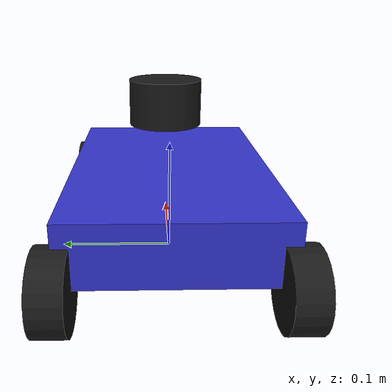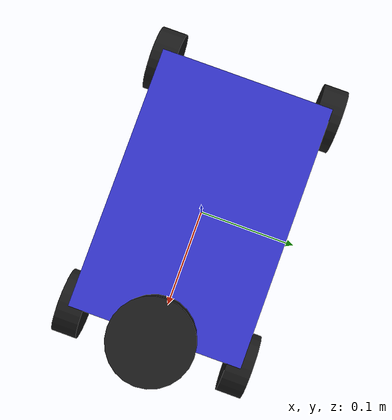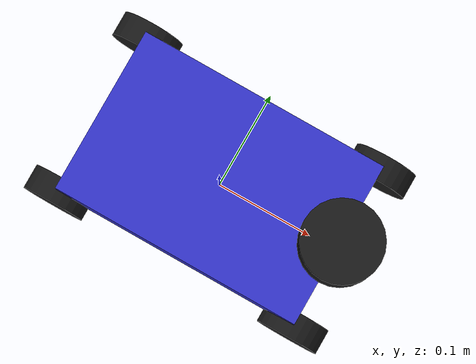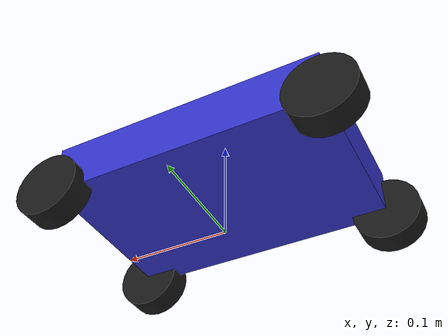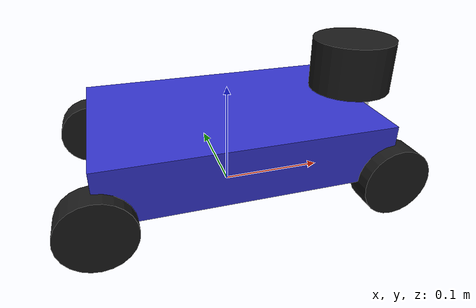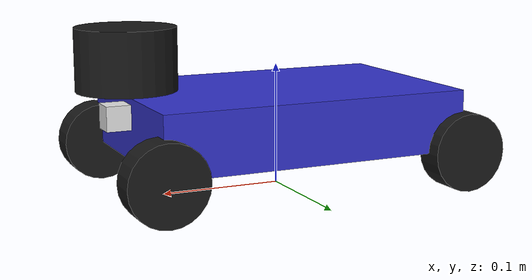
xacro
<?xml version="1.0"?>
<robot name="smartcar" xmlns:xacro="http://www.ros.org/wiki/xacro">

  <!-- Include sensor definitions -->
  <xacro:include filename="$(find smartcar)/urdf/sensors.urdf.xacro"/>

  <!-- ===== Parameters from the assignment ===== -->
  <xacro:property name="wheel_diameter" value="0.064"/>
  <xacro:property name="wheel_radius"   value="${wheel_diameter/2.0}"/>
  <xacro:property name="wheel_width"    value="0.025"/>
  <xacro:property name="wheelbase_len"  value="0.257"/>   <!-- front axle to rear axle -->
  <xacro:property name="wheelbase_wid"  value="0.17"/>    <!-- track width (left-right) -->
  <xacro:property name="chassis_thick"  value="0.05"/>

  <!-- Mass properties -->
  <xacro:property name="chassis_mass"   value="2.0"/>
  <xacro:property name="wheel_mass"     value="0.2"/>

  <!-- ===== Materials ===== -->
  <material name="blue">
    <color rgba="0.2 0.2 0.8 1"/>
  </material>

  <material name="black">
    <color rgba="0.1 0.1 0.1 1"/>
  </material>

  <material name="red">
    <color rgba="0.8 0.2 0.2 1"/>
  </material>

  <material name="white">
    <color rgba="0.9 0.9 0.9 1"/>
  </material>

  <material name="gray">
    <color rgba="0.5 0.5 0.5 1"/>
  </material>

  <!-- ===== Inertial macro ===== -->
  <xacro:macro name="inertial_box" params="mass x y z">
    <inertial>
      <origin xyz="0 0 0" rpy="0 0 0"/>
      <mass value="${mass}"/>
      <!-- Box inertia formula: I = (1/12) * m * (h^2 + d^2) for each axis -->
      <inertia ixx="${mass*(y*y+z*z)/12.0}"
               iyy="${mass*(x*x+z*z)/12.0}"
               izz="${mass*(x*x+y*y)/12.0}"
               ixy="0" ixz="0" iyz="0"/>
    </inertial>
  </xacro:macro>

  <!-- ===== Base Links ===== -->
  <link name="base_footprint"/>

  <link name="base_link">
    <visual>
      <geometry>
        <box size="0.001 0.001 0.001"/>
      </geometry>
    </visual>
  </link>

  <joint name="base_footprint_to_base_link" type="fixed">
    <parent link="base_footprint"/>
    <child  link="base_link"/>
    <origin xyz="0 0 ${wheel_radius}" rpy="0 0 0"/>
  </joint>

  <!-- ===== Chassis ===== -->
  <link name="chassis_link">
    <visual>
      <origin xyz="0 0 ${chassis_thick/2.0}" rpy="0 0 0"/>
      <geometry>
        <box size="${wheelbase_len} ${wheelbase_wid} ${chassis_thick}"/>
      </geometry>
      <material name="blue"/>
    </visual>
    <collision>
      <origin xyz="0 0 ${chassis_thick/2.0}" rpy="0 0 0"/>
      <geometry>
        <box size="${wheelbase_len} ${wheelbase_wid} ${chassis_thick}"/>
      </geometry>
    </collision>
    <xacro:inertial_box mass="${chassis_mass}" x="${wheelbase_len}" y="${wheelbase_wid}" z="${chassis_thick}"/>
  </link>

  <joint name="base_to_chassis" type="fixed">
    <parent link="base_link"/>
    <child  link="chassis_link"/>
    <origin xyz="0 0 0" rpy="0 0 0"/>
  </joint>

  <!-- ===== Wheel macro ===== -->
  <xacro:macro name="wheel" params="name">
    <link name="${name}">
      <visual>
        <origin xyz="0 0 0" rpy="${pi/2} 0 0"/>
        <geometry>
          <cylinder radius="${wheel_radius}" length="${wheel_width}"/>
        </geometry>
        <material name="black"/>
      </visual>
      <collision>
        <origin xyz="0 0 0" rpy="${pi/2} 0 0"/>
        <geometry>
          <cylinder radius="${wheel_radius}" length="${wheel_width}"/>
        </geometry>
      </collision>
      <xacro:inertial_box mass="${wheel_mass}" x="${wheel_width}" y="${wheel_diameter}" z="${wheel_diameter}"/>
    </link>
  </xacro:macro>

  <!-- ===== Rear Wheels (no steering) ===== -->
  <xacro:wheel name="back_left_wheel"/>
  <joint name="back_left_wheel_joint" type="continuous">
    <parent link="base_link"/>
    <child  link="back_left_wheel"/>
    <origin xyz="${-wheelbase_len/2.0} ${wheelbase_wid/2.0} 0" rpy="0 0 0"/>
    <axis xyz="0 1 0"/>
  </joint>

  <xacro:wheel name="back_right_wheel"/>
  <joint name="back_right_wheel_joint" type="continuous">
    <parent link="base_link"/>
    <child  link="back_right_wheel"/>
    <origin xyz="${-wheelbase_len/2.0} ${-wheelbase_wid/2.0} 0" rpy="0 0 0"/>
    <axis xyz="0 1 0"/>
  </joint>

  <!-- ===== Front Wheels (with steering) ===== -->
  <!-- CHANGED: knuckle -> steering_link to match Gazebo plugin -->

  <!-- Left front: steering knuckle + wheel -->
  <link name="front_left_steering_link">
    <inertial>
      <origin xyz="0 0 0" rpy="0 0 0"/>
      <mass value="0.01"/>
      <inertia ixx="1e-6" iyy="1e-6" izz="1e-6" ixy="0" ixz="0" iyz="0"/>
    </inertial>
  </link>

  <joint name="front_left_wheel_steer_joint" type="continuous">
    <parent link="base_link"/>
    <child  link="front_left_steering_link"/>
    <origin xyz="${wheelbase_len/2.0} ${wheelbase_wid/2.0} 0" rpy="0 0 0"/>
    <axis xyz="0 0 1"/>
  </joint>

  <xacro:wheel name="front_left_wheel"/>
  <joint name="front_left_wheel_joint" type="continuous">
    <parent link="front_left_steering_link"/>
    <child  link="front_left_wheel"/>
    <origin xyz="0 0 0" rpy="0 0 0"/>
    <axis xyz="0 1 0"/>
  </joint>

  <!-- Right front: steering knuckle + wheel -->
  <link name="front_right_steering_link">
    <inertial>
      <origin xyz="0 0 0" rpy="0 0 0"/>
      <mass value="0.01"/>
      <inertia ixx="1e-6" iyy="1e-6" izz="1e-6" ixy="0" ixz="0" iyz="0"/>
    </inertial>
  </link>

  <joint name="front_right_wheel_steer_joint" type="continuous">
    <parent link="base_link"/>
    <child  link="front_right_steering_link"/>
    <origin xyz="${wheelbase_len/2.0} ${-wheelbase_wid/2.0} 0" rpy="0 0 0"/>
    <axis xyz="0 0 1"/>
  </joint>

  <xacro:wheel name="front_right_wheel"/>
  <joint name="front_right_wheel_joint" type="continuous">
    <parent link="front_right_steering_link"/>
    <child  link="front_right_wheel"/>
    <origin xyz="0 0 0" rpy="0 0 0"/>
    <axis xyz="0 1 0"/>
  </joint>

  <!-- Joint State Publisher Plugin - explicitly control joint states from Gazebo -->
  <gazebo>
    <plugin name="joint_state_publisher" filename="libgazebo_ros_joint_state_publisher.so">
      <ros>
        <namespace>/</namespace>
      </ros>
      <update_rate>30</update_rate>
      <joint_name>front_left_wheel_joint</joint_name>
      <joint_name>front_right_wheel_joint</joint_name>
      <joint_name>back_left_wheel_joint</joint_name>
      <joint_name>back_right_wheel_joint</joint_name>
      <joint_name>front_left_wheel_steer_joint</joint_name>
      <joint_name>front_right_wheel_steer_joint</joint_name>
    </plugin>
  </gazebo>

  <!-- ===== Gazebo Materials for Proper Visualization ===== -->
  <!-- Chassis Material -->
  <gazebo reference="chassis_link">
    <material>Gazebo/Blue</material>
    <mu1>0.2</mu1>
    <mu2>0.2</mu2>
  </gazebo>

  <!-- Wheel Materials -->
  <gazebo reference="back_left_wheel">
    <material>Gazebo/DarkGrey</material>
    <mu1>0.8</mu1>
    <mu2>0.8</mu2>
  </gazebo>

  <gazebo reference="back_right_wheel">
    <material>Gazebo/DarkGrey</material>
    <mu1>0.8</mu1>
    <mu2>0.8</mu2>
  </gazebo>

  <gazebo reference="front_left_wheel">
    <material>Gazebo/DarkGrey</material>
    <mu1>0.8</mu1>
    <mu2>0.8</mu2>
  </gazebo>

  <gazebo reference="front_right_wheel">
    <material>Gazebo/DarkGrey</material>
    <mu1>0.8</mu1>
    <mu2>0.8</mu2>
  </gazebo>

  <!-- Steering Links -->
  <gazebo reference="front_left_steering_link">
    <material>Gazebo/Red</material>
  </gazebo>

  <gazebo reference="front_right_steering_link">
    <material>Gazebo/Red</material>
  </gazebo>

  <!-- Car Control Plugin -->
  <gazebo>
    <plugin name="car_gazebo_plugin" filename="libcar_gazebo_plugin.so">
      <robotNamespace>smart_car</robotNamespace>
    </plugin>
  </gazebo>

  <!-- Add sensors to the robot -->
  <xacro:smartcar_imu_sensor parent_link="chassis_link" wheelbase_length="${wheelbase_len}"/>
  <xacro:smartcar_lidar_sensor parent_link="chassis_link" wheelbase_length="${wheelbase_len}"/>

</robot>

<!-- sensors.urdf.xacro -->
<robot xmlns:xacro="http://www.ros.org/wiki/xacro" name="smartcar">

  <!-- Sensor Configuration Parameters -->
  <xacro:arg name="enable_imu" default="true"/>
  <xacro:arg name="enable_lidar" default="true"/>
  <xacro:arg name="imu_update_rate" default="100.0"/>
  <xacro:arg name="lidar_update_rate" default="12.0"/>
  <xacro:arg name="lidar_samples" default="360"/>
  <xacro:arg name="lidar_max_range" default="10.0"/>

  <!-- IMU Sensor Configuration -->
  <xacro:macro name="smartcar_imu_sensor" params="parent_link wheelbase_length:=${wheelbase_length}">
    <xacro:if value="$(arg enable_imu)">
      <!-- IMU Sensor Link -->
      <link name="imu_link">
        <visual>
          <origin xyz="0 0 0"/>
          <geometry>
            <box size="0.04 0.02 0.02"/>
          </geometry>
          <material name="white"/>
        </visual>
        <collision>
          <origin xyz="0 0 0"/>
          <geometry>
            <box size="0.04 0.02 0.02"/>
          </geometry>
        </collision>
        <inertial>
          <mass value="0.1"/>
          <origin xyz="0 0 0"/>
          <inertia ixx="0.001" ixy="0.0" ixz="0.0" iyy="0.001" iyz="0.0" izz="0.001"/>
        </inertial>
      </link>

      <!-- IMU positioned at center of robot -->
      <joint name="imu_joint" type="fixed">
        <parent link="${parent_link}"/>
        <child link="imu_link"/>
        <origin xyz="${wheelbase_length / 2} 0 0.035" rpy="0 0 0"/>
      </joint>

      <!-- Gazebo Classic IMU Sensor Plugin -->
      <gazebo reference="imu_link">
        <sensor name="imu_sensor" type="imu">
          <update_rate>$(arg imu_update_rate)</update_rate>
          <always_on>true</always_on>
          <visualize>false</visualize>
          <plugin filename="libgazebo_ros_imu_sensor.so" name="imu_plugin">
            <topicName>imu/data</topicName>
            <bodyName>imu_link</bodyName>
            <updateRateHZ>$(arg imu_update_rate)</updateRateHZ>
            <gaussianNoise>0.0</gaussianNoise>
            <xyzOffset>0 0 0</xyzOffset>
            <rpyOffset>0 0 0</rpyOffset>
            <frameName>imu_link</frameName>
          </plugin>
        </sensor>
      </gazebo>
    </xacro:if>
  </xacro:macro>

  <!-- LIDAR Sensor Configuration -->
  <xacro:macro name="smartcar_lidar_sensor" params="parent_link wheelbase_length:=${wheelbase_length}">
    <xacro:if value="$(arg enable_lidar)">
      <!-- LIDAR Sensor Link -->
      <link name="sllidar_base_link">
        <visual>
          <origin xyz="0 0 0"/>
          <geometry>
            <cylinder radius="0.04" length="0.05"/>
          </geometry>
          <material name="black"/>
        </visual>
        <collision>
          <origin xyz="0 0 0"/>
          <geometry>
            <cylinder radius="0.04" length="0.05"/>
          </geometry>
        </collision>
        <inertial>
          <mass value="0.2"/>
          <origin xyz="0 0 0"/>
          <inertia ixx="0.002" ixy="0.0" ixz="0.0" iyy="0.002" iyz="0.0" izz="0.002"/>
        </inertial>
      </link>

      <!-- LIDAR positioned between front wheels at center with elevation -->
      <joint name="lidar_joint" type="fixed">
        <parent link="${parent_link}"/>
        <child link="sllidar_base_link"/>
        <origin xyz="${wheelbase_length / 2} 0 0.08" rpy="0 0 0"/>
      </joint>

      <!-- Gazebo Classic LIDAR Sensor Plugin -->
      <gazebo reference="sllidar_base_link">
        <sensor type="ray" name="lidar_sensor">
          <pose>0 0 0 0 0 0</pose>
          <visualize>true</visualize>
          <update_rate>$(arg lidar_update_rate)</update_rate>
          <ray>
            <scan>
              <horizontal>
                <samples>$(arg lidar_samples)</samples>
                <resolution>1</resolution>
                <min_angle>-3.14159</min_angle>
                <max_angle>3.14159</max_angle>
              </horizontal>
            </scan>
            <range>
              <min>0.12</min>
              <max>$(arg lidar_max_range)</max>
              <resolution>0.01</resolution>
            </range>
            <noise>
              <type>gaussian</type>
              <mean>0.0</mean>
              <stddev>0.01</stddev>
            </noise>
          </ray>
          <plugin name="gazebo_ros_ray_sensor" filename="libgazebo_ros_ray_sensor.so">
            <ros>
              <remapping>~/out:=scan</remapping>
            </ros>
            <output_type>sensor_msgs/LaserScan</output_type>
            <frame_name>sllidar_base_link</frame_name>
          </plugin>
          <always_on>true</always_on>
        </sensor>
      </gazebo>
    </xacro:if>
  </xacro:macro>

</robot>
